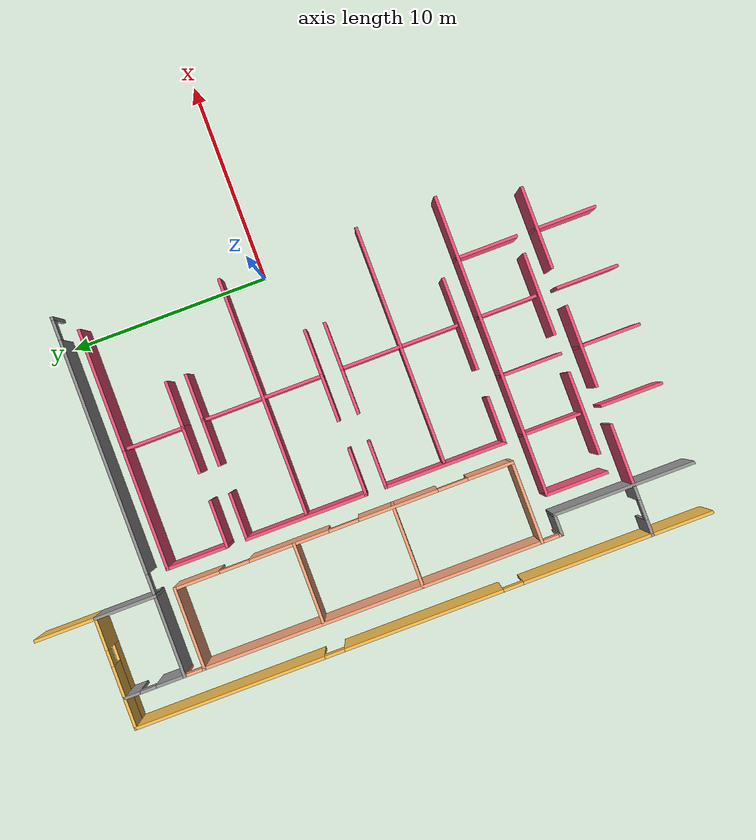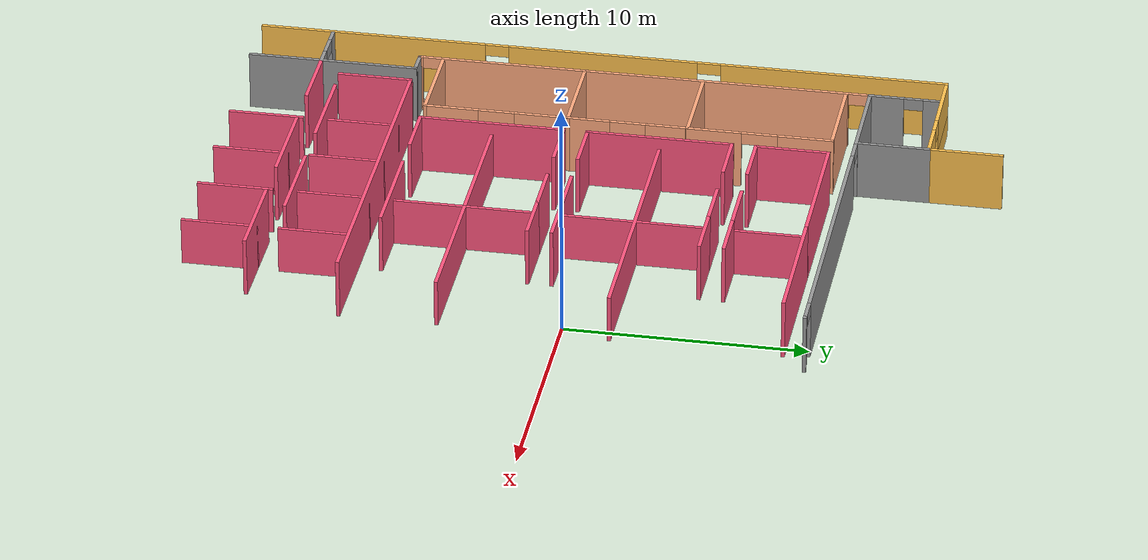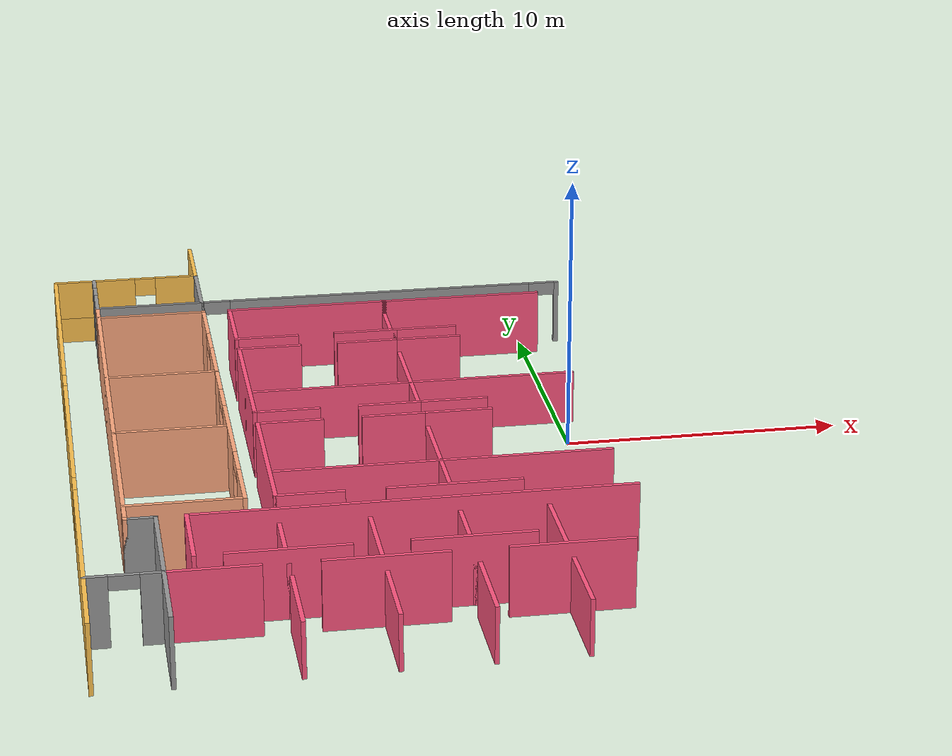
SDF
<sdf version="1.6">
 <model name="myWorld">
  <pose>-1.5 0 0 0 -0 0</pose>
  <link name="Wall_10">
   <pose>-16.5 -1.5 0 0 0 -1.5708</pose>
   <visual name="Wall_10_Visual_0">
    <pose>-9.7875 0 1.25 0 -0 0</pose>
    <geometry><box><size>9.575 0.15 2.5</size></box></geometry>
    <material>
     <script><uri>file://media/materials/scripts/gazebo.material</uri><name>Gazebo/Grey</name></script>
     <ambient>1 0.764706 0.305882 1</ambient>
    </material>
    <meta><layer>0</layer></meta>
   </visual>
   <collision name="Wall_10_Collision_0">
    <geometry><box><size>9.575 0.15 2.5</size></box></geometry>
    <pose>-9.7875 0 1.25 0 -0 0</pose>
   </collision>
   <visual name="Wall_10_Visual_1">
    <pose>0 0 1.25 0 -0 0</pose>
    <geometry><box><size>8 0.15 2.5</size></box></geometry>
    <material>
     <script><uri>file://media/materials/scripts/gazebo.material</uri><name>Gazebo/Grey</name></script>
     <ambient>1 0.764706 0.305882 1</ambient>
    </material>
    <meta><layer>0</layer></meta>
   </visual>
   <collision name="Wall_10_Collision_1">
    <geometry><box><size>8 0.15 2.5</size></box></geometry>
    <pose>0 0 1.25 0 -0 0</pose>
   </collision>
   <visual name="Wall_10_Visual_2">
    <pose>9.7875 0 1.25 0 -0 0</pose>
    <geometry><box><size>9.575 0.15 2.5</size></box></geometry>
    <material>
     <script><uri>file://media/materials/scripts/gazebo.material</uri><name>Gazebo/Grey</name></script>
     <ambient>1 0.764706 0.305882 1</ambient>
    </material>
    <meta><layer>0</layer></meta>
   </visual>
   <collision name="Wall_10_Collision_2">
    <geometry><box><size>9.575 0.15 2.5</size></box></geometry>
    <pose>9.7875 0 1.25 0 -0 0</pose>
   </collision>
   <visual name="Wall_10_Visual_3">
    <pose>-4.5 0 2.25 0 -0 0</pose>
    <geometry><box><size>1 0.15 0.5</size></box></geometry>
    <material>
     <script><uri>file://media/materials/scripts/gazebo.material</uri><name>Gazebo/Grey</name></script>
     <ambient>1 0.764706 0.305882 1</ambient>
    </material>
    <meta><layer>0</layer></meta>
   </visual>
   <collision name="Wall_10_Collision_3">
    <geometry><box><size>1 0.15 0.5</size></box></geometry>
    <pose>-4.5 0 2.25 0 -0 0</pose>
   </collision>
   <visual name="Wall_10_Visual_4">
    <pose>4.5 0 2.25 0 -0 0</pose>
    <geometry><box><size>1 0.15 0.5</size></box></geometry>
    <material>
     <script><uri>file://media/materials/scripts/gazebo.material</uri><name>Gazebo/Grey</name></script>
     <ambient>1 0.764706 0.305882 1</ambient>
    </material>
    <meta><layer>0</layer></meta>
   </visual>
   <collision name="Wall_10_Collision_4">
    <geometry><box><size>1 0.15 0.5</size></box></geometry>
    <pose>4.5 0 2.25 0 -0 0</pose>
   </collision>
  </link>
  <link name="Wall_100">
   <collision name="Wall_100_Collision">
    <geometry><box><size>15.15 0.15 2.5</size></box></geometry>
    <pose>0 0 1.25 0 -0 0</pose>
   </collision>
   <visual name="Wall_100_Visual">
    <pose>0 0 1.25 0 -0 0</pose>
    <geometry><box><size>15.15 0.15 2.5</size></box></geometry>
    <material>
     <script><uri>file://media/materials/scripts/gazebo.material</uri><name>Gazebo/Grey</name></script>
     <ambient>1 0.333333 0.498039 1</ambient>
    </material>
    <meta><layer>0</layer></meta>
   </visual>
   <pose>-5.5 -9 0 0 -0 0</pose>
  </link>
  <link name="Wall_102">
   <collision name="Wall_102_Collision">
    <geometry><box><size>3.15 0.15 2</size></box></geometry>
    <pose>0 0 1 0 -0 0</pose>
   </collision>
   <visual name="Wall_102_Visual">
    <pose>0 0 1 0 -0 0</pose>
    <geometry><box><size>3.15 0.15 2</size></box></geometry>
    <material>
     <script><uri>file://media/materials/scripts/gazebo.material</uri><name>Gazebo/Grey</name></script>
     <ambient>1 0.333333 0.498039 1</ambient>
    </material>
    <meta><layer>0</layer></meta>
   </visual>
   <pose>-10 -10.5 0 0 0 -1.5708</pose>
  </link>
  <link name="Wall_104">
   <collision name="Wall_104_Collision">
    <geometry><box><size>3.15 0.15 2</size></box></geometry>
    <pose>0 0 1 0 -0 0</pose>
   </collision>
   <visual name="Wall_104_Visual">
    <pose>0 0 1 0 -0 0</pose>
    <geometry><box><size>3.15 0.15 2</size></box></geometry>
    <material>
     <script><uri>file://media/materials/scripts/gazebo.material</uri><name>Gazebo/Grey</name></script>
     <ambient>1 0.333333 0.498039 1</ambient>
    </material>
    <meta><layer>0</layer></meta>
   </visual>
   <pose>-7 -10.5 0 0 0 -1.5708</pose>
  </link>
  <link name="Wall_106">
   <collision name="Wall_106_Collision">
    <geometry><box><size>3.15 0.15 2</size></box></geometry>
    <pose>0 0 1 0 -0 0</pose>
   </collision>
   <visual name="Wall_106_Visual">
    <pose>0 0 1 0 -0 0</pose>
    <geometry><box><size>3.15 0.15 2</size></box></geometry>
    <material>
     <script><uri>file://media/materials/scripts/gazebo.material</uri><name>Gazebo/Grey</name></script>
     <ambient>1 0.333333 0.498039 1</ambient>
    </material>
    <meta><layer>0</layer></meta>
   </visual>
   <pose>-4 -10.5 0 0 0 -1.5708</pose>
  </link>
  <link name="Wall_108">
   <collision name="Wall_108_Collision">
    <geometry><box><size>3.15 0.15 2</size></box></geometry>
    <pose>0 0 1 0 -0 0</pose>
   </collision>
   <visual name="Wall_108_Visual">
    <pose>0 0 1 0 -0 0</pose>
    <geometry><box><size>3.15 0.15 2</size></box></geometry>
    <material>
     <script><uri>file://media/materials/scripts/gazebo.material</uri><name>Gazebo/Grey</name></script>
     <ambient>1 0.333333 0.498039 1</ambient>
    </material>
    <meta><layer>0</layer></meta>
   </visual>
   <pose>-1 -10.5 0 0 0 -1.5708</pose>
  </link>
  <link name="Wall_114">
   <collision name="Wall_114_Collision">
    <geometry><box><size>3.15 0.15 2.5</size></box></geometry>
    <pose>0 0 1.25 0 -0 0</pose>
   </collision>
   <visual name="Wall_114_Visual">
    <pose>0 0 1.25 0 -0 0</pose>
    <geometry><box><size>3.15 0.15 2.5</size></box></geometry>
    <material>
     <script><uri>file://media/materials/scripts/gazebo.material</uri><name>Gazebo/Grey</name></script>
     <ambient>1 0.333333 0.498039 1</ambient>
    </material>
    <meta><layer>0</layer></meta>
   </visual>
   <pose>-13 -10.5 0 0 0 -1.5708</pose>
  </link>
  <link name="Wall_116">
   <collision name="Wall_116_Collision">
    <geometry><box><size>4.15 0.15 2.5</size></box></geometry>
    <pose>0 0 1.25 0 -0 0</pose>
   </collision>
   <visual name="Wall_116_Visual">
    <pose>0 0 1.25 0 -0 0</pose>
    <geometry><box><size>4.15 0.15 2.5</size></box></geometry>
    <material>
     <script><uri>file://media/materials/scripts/gazebo.material</uri><name>Gazebo/Grey</name></script>
     <ambient>1 0.333333 0.498039 1</ambient>
    </material>
    <meta><layer>0</layer></meta>
   </visual>
   <pose>-10 -12 0 0 -0 0</pose>
  </link>
  <link name="Wall_118">
   <collision name="Wall_118_Collision">
    <geometry><box><size>4.15 0.15 2.5</size></box></geometry>
    <pose>0 0 1.25 0 -0 0</pose>
   </collision>
   <visual name="Wall_118_Visual">
    <pose>0 0 1.25 0 -0 0</pose>
    <geometry><box><size>4.15 0.15 2.5</size></box></geometry>
    <material>
     <script><uri>file://media/materials/scripts/gazebo.material</uri><name>Gazebo/Grey</name></script>
     <ambient>1 0.333333 0.498039 1</ambient>
    </material>
    <meta><layer>0</layer></meta>
   </visual>
   <pose>-4 -12 0 0 -0 0</pose>
  </link>
  <link name="Wall_12">
   <pose>-15 11.5 0 0 0 -1.5708</pose>
   <visual name="Wall_12_Visual_0">
    <pose>-1.1475 0 1.25 0 -0 0</pose>
    <geometry><box><size>0.855 0.15 2.5</size></box></geometry>
    <material>
     <script><uri>file://media/materials/scripts/gazebo.material</uri><name>Gazebo/Grey</name></script>
     <ambient>1 1 1 1</ambient>
    </material>
    <meta><layer>0</layer></meta>
   </visual>
   <collision name="Wall_12_Collision_0">
    <geometry><box><size>0.855 0.15 2.5</size></box></geometry>
    <pose>-1.1475 0 1.25 0 -0 0</pose>
   </collision>
   <visual name="Wall_12_Visual_1">
    <pose>0.8275 0 1.25 0 -0 0</pose>
    <geometry><box><size>1.495 0.15 2.5</size></box></geometry>
    <material>
     <script><uri>file://media/materials/scripts/gazebo.material</uri><name>Gazebo/Grey</name></script>
     <ambient>1 1 1 1</ambient>
    </material>
    <meta><layer>0</layer></meta>
   </visual>
   <collision name="Wall_12_Collision_1">
    <geometry><box><size>1.495 0.15 2.5</size></box></geometry>
    <pose>0.8275 0 1.25 0 -0 0</pose>
   </collision>
   <visual name="Wall_12_Visual_2">
    <pose>-0.32 0 2.25 0 -0 0</pose>
    <geometry><box><size>0.8 0.15 0.5</size></box></geometry>
    <material>
     <script><uri>file://media/materials/scripts/gazebo.material</uri><name>Gazebo/Grey</name></script>
     <ambient>1 1 1 1</ambient>
    </material>
    <meta><layer>0</layer></meta>
   </visual>
   <collision name="Wall_12_Collision_2">
    <geometry><box><size>0.8 0.15 0.5</size></box></geometry>
    <pose>-0.32 0 2.25 0 -0 0</pose>
   </collision>
  </link>
  <link name="Wall_126">
   <collision name="Wall_126_Collision">
    <geometry><box><size>6.15 0.15 2</size></box></geometry>
    <pose>0 0 1 0 -0 0</pose>
   </collision>
   <visual name="Wall_126_Visual">
    <pose>0 0 1 0 -0 0</pose>
    <geometry><box><size>6.15 0.15 2</size></box></geometry>
    <material>
     <script><uri>file://media/materials/scripts/gazebo.material</uri><name>Gazebo/Grey</name></script>
     <ambient>1 0.333333 0.498039 1</ambient>
    </material>
    <meta><layer>0</layer></meta>
   </visual>
   <pose>-1 -5 0 0 -0 0</pose>
  </link>
  <link name="Wall_130">
   <collision name="Wall_130_Collision">
    <geometry><box><size>2.4 0.15 2.5</size></box></geometry>
    <pose>0 0 1.25 0 -0 0</pose>
   </collision>
   <visual name="Wall_130_Visual">
    <pose>0 0 1.25 0 -0 0</pose>
    <geometry><box><size>2.4 0.15 2.5</size></box></geometry>
    <material>
     <script><uri>file://media/materials/scripts/gazebo.material</uri><name>Gazebo/Grey</name></script>
     <ambient>1 0.333333 0.498039 1</ambient>
    </material>
    <meta><layer>0</layer></meta>
   </visual>
   <pose>-2.875 -2 0 0 -0 0</pose>
  </link>
  <link name="Wall_135">
   <collision name="Wall_135_Collision">
    <geometry><box><size>2.4 0.15 2.5</size></box></geometry>
    <pose>0 0 1.25 0 -0 0</pose>
   </collision>
   <visual name="Wall_135_Visual">
    <pose>0 0 1.25 0 -0 0</pose>
    <geometry><box><size>2.4 0.15 2.5</size></box></geometry>
    <material>
     <script><uri>file://media/materials/scripts/gazebo.material</uri><name>Gazebo/Grey</name></script>
     <ambient>1 0.333333 0.498039 1</ambient>
    </material>
    <meta><layer>0</layer></meta>
   </visual>
   <pose>-2.875 5 0 0 -0 0</pose>
  </link>
  <link name="Wall_14">
   <pose>-15 0.5 0 0 0 -1.5708</pose>
   <visual name="Wall_14_Visual_0">
    <pose>-9.4925 0 1.25 0 -0 0</pose>
    <geometry><box><size>0.165 0.15 2.5</size></box></geometry>
    <material>
     <script><uri>file://media/materials/scripts/gazebo.material</uri><name>Gazebo/Grey</name></script>
     <ambient>1 0.666667 0.498039 1</ambient>
    </material>
    <meta><layer>0</layer></meta>
   </visual>
   <collision name="Wall_14_Collision_0">
    <geometry><box><size>0.165 0.15 2.5</size></box></geometry>
    <pose>-9.4925 0 1.25 0 -0 0</pose>
   </collision>
   <visual name="Wall_14_Visual_1">
    <pose>-0.025 0 1.25 0 -0 0</pose>
    <geometry><box><size>17.17 0.15 2.5</size></box></geometry>
    <material>
     <script><uri>file://media/materials/scripts/gazebo.material</uri><name>Gazebo/Grey</name></script>
     <ambient>1 0.666667 0.498039 1</ambient>
    </material>
    <meta><layer>0</layer></meta>
   </visual>
   <collision name="Wall_14_Collision_1">
    <geometry><box><size>17.17 0.15 2.5</size></box></geometry>
    <pose>-0.025 0 1.25 0 -0 0</pose>
   </collision>
   <visual name="Wall_14_Visual_2">
    <pose>9.4675 0 1.25 0 -0 0</pose>
    <geometry><box><size>0.215 0.15 2.5</size></box></geometry>
    <material>
     <script><uri>file://media/materials/scripts/gazebo.material</uri><name>Gazebo/Grey</name></script>
     <ambient>1 0.666667 0.498039 1</ambient>
    </material>
    <meta><layer>0</layer></meta>
   </visual>
   <collision name="Wall_14_Collision_2">
    <geometry><box><size>0.215 0.15 2.5</size></box></geometry>
    <pose>9.4675 0 1.25 0 -0 0</pose>
   </collision>
   <visual name="Wall_14_Visual_3">
    <pose>-9.01 0 2.25 0 -0 0</pose>
    <geometry><box><size>0.8 0.15 0.5</size></box></geometry>
    <material>
     <script><uri>file://media/materials/scripts/gazebo.material</uri><name>Gazebo/Grey</name></script>
     <ambient>1 0.666667 0.498039 1</ambient>
    </material>
    <meta><layer>0</layer></meta>
   </visual>
   <collision name="Wall_14_Collision_3">
    <geometry><box><size>0.8 0.15 0.5</size></box></geometry>
    <pose>-9.01 0 2.25 0 -0 0</pose>
   </collision>
   <visual name="Wall_14_Visual_4">
    <pose>8.96 0 2.25 0 -0 0</pose>
    <geometry><box><size>0.8 0.15 0.5</size></box></geometry>
    <material>
     <script><uri>file://media/materials/scripts/gazebo.material</uri><name>Gazebo/Grey</name></script>
     <ambient>1 0.666667 0.498039 1</ambient>
    </material>
    <meta><layer>0</layer></meta>
   </visual>
   <collision name="Wall_14_Collision_4">
    <geometry><box><size>0.8 0.15 0.5</size></box></geometry>
    <pose>8.96 0 2.25 0 -0 0</pose>
   </collision>
  </link>
  <link name="Wall_141">
   <collision name="Wall_141_Collision">
    <geometry><box><size>2.4 0.15 2.5</size></box></geometry>
    <pose>0 0 1.25 0 -0 0</pose>
   </collision>
   <visual name="Wall_141_Visual">
    <pose>0 0 1.25 0 -0 0</pose>
    <geometry><box><size>2.4 0.15 2.5</size></box></geometry>
    <material>
     <script><uri>file://media/materials/scripts/gazebo.material</uri><name>Gazebo/Grey</name></script>
     <ambient>1 0.333333 0.498039 1</ambient>
    </material>
    <meta><layer>0</layer></meta>
   </visual>
   <pose>-2.875 -1 0 0 -0 0</pose>
  </link>
  <link name="Wall_143">
   <collision name="Wall_143_Collision">
    <geometry><box><size>6.15 0.15 2.5</size></box></geometry>
    <pose>0 0 1.25 0 -0 0</pose>
   </collision>
   <visual name="Wall_143_Visual">
    <pose>0 0 1.25 0 -0 0</pose>
    <geometry><box><size>6.15 0.15 2.5</size></box></geometry>
    <material>
     <script><uri>file://media/materials/scripts/gazebo.material</uri><name>Gazebo/Grey</name></script>
     <ambient>1 0.333333 0.498039 1</ambient>
    </material>
    <meta><layer>0</layer></meta>
   </visual>
   <pose>-1 9 0 0 -0 0</pose>
  </link>
  <link name="Wall_147">
   <collision name="Wall_147_Collision">
    <geometry><box><size>2.4 0.15 2.5</size></box></geometry>
    <pose>0 0 1.25 0 -0 0</pose>
   </collision>
   <visual name="Wall_147_Visual">
    <pose>0 0 1.25 0 -0 0</pose>
    <geometry><box><size>2.4 0.15 2.5</size></box></geometry>
    <material>
     <script><uri>file://media/materials/scripts/gazebo.material</uri><name>Gazebo/Grey</name></script>
     <ambient>1 0.333333 0.498039 1</ambient>
    </material>
    <meta><layer>0</layer></meta>
   </visual>
   <pose>-2.875 6 0 0 -0 0</pose>
  </link>
  <link name="Wall_149">
   <collision name="Wall_149_Collision">
    <geometry><box><size>4.15 0.15 2.5</size></box></geometry>
    <pose>0 0 1.25 0 -0 0</pose>
   </collision>
   <visual name="Wall_149_Visual">
    <pose>0 0 1.25 0 -0 0</pose>
    <geometry><box><size>4.15 0.15 2.5</size></box></geometry>
    <material>
     <script><uri>file://media/materials/scripts/gazebo.material</uri><name>Gazebo/Grey</name></script>
     <ambient>1 0.666667 0.498039 1</ambient>
    </material>
    <meta><layer>0</layer></meta>
   </visual>
   <pose>-13 3 0 0 -0 0</pose>
  </link>
  <link name="Wall_16">
   <collision name="Wall_16_Collision">
    <geometry><box><size>7.15 0.15 2.5</size></box></geometry>
    <pose>0 0 1.25 0 -0 0</pose>
   </collision>
   <visual name="Wall_16_Visual">
    <pose>0 0 1.25 0 -0 0</pose>
    <geometry><box><size>7.15 0.15 2.5</size></box></geometry>
    <material>
     <script><uri>file://media/materials/scripts/gazebo.material</uri><name>Gazebo/Grey</name></script>
     <ambient>1 1 1 1</ambient>
    </material>
    <meta><layer>0</layer></meta>
   </visual>
   <pose>-14 -12.5 0 0 0 -1.5708</pose>
  </link>
  <link name="Wall_18">
   <pose>-15.25 -13 0 0 -0 0</pose>
   <visual name="Wall_18_Visual_0">
    <pose>-0.9125 0 1.25 0 -0 0</pose>
    <geometry><box><size>0.825 0.15 2.5</size></box></geometry>
    <material>
     <script><uri>file://media/materials/scripts/gazebo.material</uri><name>Gazebo/Grey</name></script>
     <ambient>1 1 1 1</ambient>
    </material>
    <meta><layer>0</layer></meta>
   </visual>
   <collision name="Wall_18_Collision_0">
    <geometry><box><size>0.825 0.15 2.5</size></box></geometry>
    <pose>-0.9125 0 1.25 0 -0 0</pose>
   </collision>
   <visual name="Wall_18_Visual_1">
    <pose>0.9125 0 1.25 0 -0 0</pose>
    <geometry><box><size>0.825 0.15 2.5</size></box></geometry>
    <material>
     <script><uri>file://media/materials/scripts/gazebo.material</uri><name>Gazebo/Grey</name></script>
     <ambient>1 1 1 1</ambient>
    </material>
    <meta><layer>0</layer></meta>
   </visual>
   <collision name="Wall_18_Collision_1">
    <geometry><box><size>0.825 0.15 2.5</size></box></geometry>
    <pose>0.9125 0 1.25 0 -0 0</pose>
   </collision>
   <visual name="Wall_18_Visual_2">
    <pose>0 0 2.25 0 -0 0</pose>
    <geometry><box><size>1 0.15 0.5</size></box></geometry>
    <material>
     <script><uri>file://media/materials/scripts/gazebo.material</uri><name>Gazebo/Grey</name></script>
     <ambient>1 1 1 1</ambient>
    </material>
    <meta><layer>0</layer></meta>
   </visual>
   <collision name="Wall_18_Collision_2">
    <geometry><box><size>1 0.15 0.5</size></box></geometry>
    <pose>0 0 2.25 0 -0 0</pose>
   </collision>
  </link>
  <link name="Wall_20">
   <collision name="Wall_20_Collision">
    <geometry><box><size>3.15 0.15 2.5</size></box></geometry>
    <pose>0 0 1.25 0 -0 0</pose>
   </collision>
   <visual name="Wall_20_Visual">
    <pose>0 0 1.25 0 -0 0</pose>
    <geometry><box><size>3.15 0.15 2.5</size></box></geometry>
    <material>
     <script><uri>file://media/materials/scripts/gazebo.material</uri><name>Gazebo/Grey</name></script>
     <ambient>1 1 1 1</ambient>
    </material>
    <meta><layer>0</layer></meta>
   </visual>
   <pose>-11 11.5 0 0 0 -1.5708</pose>
  </link>
  <link name="Wall_26">
   <pose>-11 0.5 0 0 0 -1.5708</pose>
   <visual name="Wall_26_Visual_0">
    <pose>-7.4125 0 1.25 0 -0 0</pose>
    <geometry><box><size>2.325 0.15 2.5</size></box></geometry>
    <material>
     <script><uri>file://media/materials/scripts/gazebo.material</uri><name>Gazebo/Grey</name></script>
     <ambient>1 0.666667 0.498039 1</ambient>
    </material>
    <meta><layer>0</layer></meta>
   </visual>
   <collision name="Wall_26_Collision_0">
    <geometry><box><size>2.325 0.15 2.5</size></box></geometry>
    <pose>-7.4125 0 1.25 0 -0 0</pose>
   </collision>
   <visual name="Wall_26_Visual_1">
    <pose>-2.75 0 1.25 0 -0 0</pose>
    <geometry><box><size>4 0.15 2.5</size></box></geometry>
    <material>
     <script><uri>file://media/materials/scripts/gazebo.material</uri><name>Gazebo/Grey</name></script>
     <ambient>1 0.666667 0.498039 1</ambient>
    </material>
    <meta><layer>0</layer></meta>
   </visual>
   <collision name="Wall_26_Collision_1">
    <geometry><box><size>4 0.15 2.5</size></box></geometry>
    <pose>-2.75 0 1.25 0 -0 0</pose>
   </collision>
   <visual name="Wall_26_Visual_2">
    <pose>2.75 0 1.25 0 -0 0</pose>
    <geometry><box><size>4 0.15 2.5</size></box></geometry>
    <material>
     <script><uri>file://media/materials/scripts/gazebo.material</uri><name>Gazebo/Grey</name></script>
     <ambient>1 0.666667 0.498039 1</ambient>
    </material>
    <meta><layer>0</layer></meta>
   </visual>
   <collision name="Wall_26_Collision_2">
    <geometry><box><size>4 0.15 2.5</size></box></geometry>
    <pose>2.75 0 1.25 0 -0 0</pose>
   </collision>
   <visual name="Wall_26_Visual_3">
    <pose>7.4125 0 1.25 0 -0 0</pose>
    <geometry><box><size>2.325 0.15 2.5</size></box></geometry>
    <material>
     <script><uri>file://media/materials/scripts/gazebo.material</uri><name>Gazebo/Grey</name></script>
     <ambient>1 0.666667 0.498039 1</ambient>
    </material>
    <meta><layer>0</layer></meta>
   </visual>
   <collision name="Wall_26_Collision_3">
    <geometry><box><size>2.325 0.15 2.5</size></box></geometry>
    <pose>7.4125 0 1.25 0 -0 0</pose>
   </collision>
   <visual name="Wall_26_Visual_4">
    <pose>-5.5 0 2.25 0 -0 0</pose>
    <geometry><box><size>1.5 0.15 0.5</size></box></geometry>
    <material>
     <script><uri>file://media/materials/scripts/gazebo.material</uri><name>Gazebo/Grey</name></script>
     <ambient>1 0.666667 0.498039 1</ambient>
    </material>
    <meta><layer>0</layer></meta>
   </visual>
   <collision name="Wall_26_Collision_4">
    <geometry><box><size>1.5 0.15 0.5</size></box></geometry>
    <pose>-5.5 0 2.25 0 -0 0</pose>
   </collision>
   <visual name="Wall_26_Visual_5">
    <pose>0 0 2.25 0 -0 0</pose>
    <geometry><box><size>1.5 0.15 0.5</size></box></geometry>
    <material>
     <script><uri>file://media/materials/scripts/gazebo.material</uri><name>Gazebo/Grey</name></script>
     <ambient>1 0.666667 0.498039 1</ambient>
    </material>
    <meta><layer>0</layer></meta>
   </visual>
   <collision name="Wall_26_Collision_5">
    <geometry><box><size>1.5 0.15 0.5</size></box></geometry>
    <pose>0 0 2.25 0 -0 0</pose>
   </collision>
   <visual name="Wall_26_Visual_6">
    <pose>5.5 0 2.25 0 -0 0</pose>
    <geometry><box><size>1.5 0.15 0.5</size></box></geometry>
    <material>
     <script><uri>file://media/materials/scripts/gazebo.material</uri><name>Gazebo/Grey</name></script>
     <ambient>1 0.666667 0.498039 1</ambient>
    </material>
    <meta><layer>0</layer></meta>
   </visual>
   <collision name="Wall_26_Collision_6">
    <geometry><box><size>1.5 0.15 0.5</size></box></geometry>
    <pose>5.5 0 2.25 0 -0 0</pose>
   </collision>
  </link>
  <link name="Wall_28">
   <collision name="Wall_28_Collision">
    <geometry><box><size>4.15 0.15 2.5</size></box></geometry>
    <pose>0 0 1.25 0 -0 0</pose>
   </collision>
   <visual name="Wall_28_Visual">
    <pose>0 0 1.25 0 -0 0</pose>
    <geometry><box><size>4.15 0.15 2.5</size></box></geometry>
    <material>
     <script><uri>file://media/materials/scripts/gazebo.material</uri><name>Gazebo/Grey</name></script>
     <ambient>1 0.666667 0.498039 1</ambient>
    </material>
    <meta><layer>0</layer></meta>
   </visual>
   <pose>-13 -2 0 0 -0 0</pose>
  </link>
  <link name="Wall_32">
   <collision name="Wall_32_Collision">
    <geometry><box><size>4.15 0.15 2.5</size></box></geometry>
    <pose>0 0 1.25 0 -0 0</pose>
   </collision>
   <visual name="Wall_32_Visual">
    <pose>0 0 1.25 0 -0 0</pose>
    <geometry><box><size>4.15 0.15 2.5</size></box></geometry>
    <material>
     <script><uri>file://media/materials/scripts/gazebo.material</uri><name>Gazebo/Grey</name></script>
     <ambient>1 0.666667 0.498039 1</ambient>
    </material>
    <meta><layer>0</layer></meta>
   </visual>
   <pose>-13 -8 0 0 -0 0</pose>
  </link>
  <link name="Wall_34">
   <collision name="Wall_34_Collision">
    <geometry><box><size>1.15 0.15 2.5</size></box></geometry>
    <pose>0 0 1.25 0 -0 0</pose>
   </collision>
   <visual name="Wall_34_Visual">
    <pose>0 0 1.25 0 -0 0</pose>
    <geometry><box><size>1.15 0.15 2.5</size></box></geometry>
    <material>
     <script><uri>file://media/materials/scripts/gazebo.material</uri><name>Gazebo/Grey</name></script>
     <ambient>1 1 1 1</ambient>
    </material>
    <meta><layer>0</layer></meta>
   </visual>
   <pose>-14.5 -9 0 0 -0 0</pose>
  </link>
  <link name="Wall_38">
   <collision name="Wall_38_Collision">
    <geometry><box><size>3.15 0.15 2.5</size></box></geometry>
    <pose>0 0 1.25 0 -0 0</pose>
   </collision>
   <visual name="Wall_38_Visual">
    <pose>0 0 1.25 0 -0 0</pose>
    <geometry><box><size>3.15 0.15 2.5</size></box></geometry>
    <material>
     <script><uri>file://media/materials/scripts/gazebo.material</uri><name>Gazebo/Grey</name></script>
     <ambient>1 0.333333 0.498039 1</ambient>
    </material>
    <meta><layer>0</layer></meta>
   </visual>
   <pose>-12.5 -13 0 0 -0 0</pose>
  </link>
  <link name="Wall_42">
   <pose>-6 10 0 0 -0 0</pose>
   <visual name="Wall_42_Visual_0">
    <pose>-6.9875 0 1.25 0 -0 0</pose>
    <geometry><box><size>4.175 0.15 2.5</size></box></geometry>
    <material>
     <script><uri>file://media/materials/scripts/gazebo.material</uri><name>Gazebo/Grey</name></script>
     <ambient>1 1 1 1</ambient>
    </material>
    <meta><layer>0</layer></meta>
   </visual>
   <collision name="Wall_42_Collision_0">
    <geometry><box><size>4.175 0.15 2.5</size></box></geometry>
    <pose>-6.9875 0 1.25 0 -0 0</pose>
   </collision>
   <visual name="Wall_42_Visual_1">
    <pose>2 0 1.25 0 -0 0</pose>
    <geometry><box><size>11.8 0.15 2.5</size></box></geometry>
    <material>
     <script><uri>file://media/materials/scripts/gazebo.material</uri><name>Gazebo/Grey</name></script>
     <ambient>1 1 1 1</ambient>
    </material>
    <meta><layer>0</layer></meta>
   </visual>
   <collision name="Wall_42_Collision_1">
    <geometry><box><size>11.8 0.15 2.5</size></box></geometry>
    <pose>2 0 1.25 0 -0 0</pose>
   </collision>
   <visual name="Wall_42_Visual_2">
    <pose>8.9875 0 1.25 0 -0 0</pose>
    <geometry><box><size>0.175 0.15 2.5</size></box></geometry>
    <material>
     <script><uri>file://media/materials/scripts/gazebo.material</uri><name>Gazebo/Grey</name></script>
     <ambient>1 1 1 1</ambient>
    </material>
    <meta><layer>0</layer></meta>
   </visual>
   <collision name="Wall_42_Collision_2">
    <geometry><box><size>0.175 0.15 2.5</size></box></geometry>
    <pose>8.9875 0 1.25 0 -0 0</pose>
   </collision>
   <visual name="Wall_42_Visual_3">
    <pose>-4.4 0 2.25 0 -0 0</pose>
    <geometry><box><size>1 0.15 0.5</size></box></geometry>
    <material>
     <script><uri>file://media/materials/scripts/gazebo.material</uri><name>Gazebo/Grey</name></script>
     <ambient>1 1 1 1</ambient>
    </material>
    <meta><layer>0</layer></meta>
   </visual>
   <collision name="Wall_42_Collision_3">
    <geometry><box><size>1 0.15 0.5</size></box></geometry>
    <pose>-4.4 0 2.25 0 -0 0</pose>
   </collision>
   <visual name="Wall_42_Visual_4">
    <pose>8.4 0 2.25 0 -0 0</pose>
    <geometry><box><size>1 0.15 0.5</size></box></geometry>
    <material>
     <script><uri>file://media/materials/scripts/gazebo.material</uri><name>Gazebo/Grey</name></script>
     <ambient>1 1 1 1</ambient>
    </material>
    <meta><layer>0</layer></meta>
   </visual>
   <collision name="Wall_42_Collision_4">
    <geometry><box><size>1 0.15 0.5</size></box></geometry>
    <pose>8.4 0 2.25 0 -0 0</pose>
   </collision>
  </link>
  <link name="Wall_44">
   <collision name="Wall_44_Collision">
    <geometry><box><size>4.15 0.15 2.5</size></box></geometry>
    <pose>0 0 1.25 0 -0 0</pose>
   </collision>
   <visual name="Wall_44_Visual">
    <pose>0 0 1.25 0 -0 0</pose>
    <geometry><box><size>4.15 0.15 2.5</size></box></geometry>
    <material>
     <script><uri>file://media/materials/scripts/gazebo.material</uri><name>Gazebo/Grey</name></script>
     <ambient>1 0.666667 0.498039 1</ambient>
    </material>
    <meta><layer>0</layer></meta>
   </visual>
   <pose>-13 9 0 0 -0 0</pose>
  </link>
  <link name="Wall_46">
   <collision name="Wall_46_Collision">
    <geometry><box><size>6.15 0.15 2.5</size></box></geometry>
    <pose>0 0 1.25 0 -0 0</pose>
   </collision>
   <visual name="Wall_46_Visual">
    <pose>0 0 1.25 0 -0 0</pose>
    <geometry><box><size>6.15 0.15 2.5</size></box></geometry>
    <material>
     <script><uri>file://media/materials/scripts/gazebo.material</uri><name>Gazebo/Grey</name></script>
     <ambient>1 0.333333 0.498039 1</ambient>
    </material>
    <meta><layer>0</layer></meta>
   </visual>
   <pose>-10 -5 0 0 -0 1.5708</pose>
  </link>
  <link name="Wall_48">
   <collision name="Wall_48_Collision">
    <geometry><box><size>6.15 0.15 2</size></box></geometry>
    <pose>0 0 1 0 -0 0</pose>
   </collision>
   <visual name="Wall_48_Visual">
    <pose>0 0 1 0 -0 0</pose>
    <geometry><box><size>6.15 0.15 2</size></box></geometry>
    <material>
     <script><uri>file://media/materials/scripts/gazebo.material</uri><name>Gazebo/Grey</name></script>
     <ambient>1 0.333333 0.498039 1</ambient>
    </material>
    <meta><layer>0</layer></meta>
   </visual>
   <pose>-4 -5 0 0 -0 1.5708</pose>
  </link>
  <link name="Wall_50">
   <collision name="Wall_50_Collision">
    <geometry><box><size>3.15 0.15 2</size></box></geometry>
    <pose>0 0 1 0 -0 0</pose>
   </collision>
   <visual name="Wall_50_Visual">
    <pose>0 0 1 0 -0 0</pose>
    <geometry><box><size>3.15 0.15 2</size></box></geometry>
    <material>
     <script><uri>file://media/materials/scripts/gazebo.material</uri><name>Gazebo/Grey</name></script>
     <ambient>1 0.333333 0.498039 1</ambient>
    </material>
    <meta><layer>0</layer></meta>
   </visual>
   <pose>-10 -14.5 0 0 -0 1.5708</pose>
  </link>
  <link name="Wall_52">
   <collision name="Wall_52_Collision">
    <geometry><box><size>3.15 0.15 2</size></box></geometry>
    <pose>0 0 1 0 -0 0</pose>
   </collision>
   <visual name="Wall_52_Visual">
    <pose>0 0 1 0 -0 0</pose>
    <geometry><box><size>3.15 0.15 2</size></box></geometry>
    <material>
     <script><uri>file://media/materials/scripts/gazebo.material</uri><name>Gazebo/Grey</name></script>
     <ambient>1 0.333333 0.498039 1</ambient>
    </material>
    <meta><layer>0</layer></meta>
   </visual>
   <pose>-7 -14.5 0 0 -0 1.5708</pose>
  </link>
  <link name="Wall_57">
   <collision name="Wall_57_Collision">
    <geometry><box><size>3.15 0.15 2</size></box></geometry>
    <pose>0 0 1 0 -0 0</pose>
   </collision>
   <visual name="Wall_57_Visual">
    <pose>0 0 1 0 -0 0</pose>
    <geometry><box><size>3.15 0.15 2</size></box></geometry>
    <material>
     <script><uri>file://media/materials/scripts/gazebo.material</uri><name>Gazebo/Grey</name></script>
     <ambient>1 0.333333 0.498039 1</ambient>
    </material>
    <meta><layer>0</layer></meta>
   </visual>
   <pose>-4 -14.5 0 0 -0 1.5708</pose>
  </link>
  <link name="Wall_59">
   <collision name="Wall_59_Collision">
    <geometry><box><size>4.15 0.15 2.5</size></box></geometry>
    <pose>0 0 1.25 0 -0 0</pose>
   </collision>
   <visual name="Wall_59_Visual">
    <pose>0 0 1.25 0 -0 0</pose>
    <geometry><box><size>4.15 0.15 2.5</size></box></geometry>
    <material>
     <script><uri>file://media/materials/scripts/gazebo.material</uri><name>Gazebo/Grey</name></script>
     <ambient>1 0.333333 0.498039 1</ambient>
    </material>
    <meta><layer>0</layer></meta>
   </visual>
   <pose>-7 -13 0 0 -0 0</pose>
  </link>
  <link name="Wall_6">
   <collision name="Wall_6_Collision">
    <geometry><box><size>3.15 0.15 2.5</size></box></geometry>
    <pose>0 0 1.25 0 -0 0</pose>
   </collision>
   <visual name="Wall_6_Visual">
    <pose>0 0 1.25 0 -0 0</pose>
    <geometry><box><size>3.15 0.15 2.5</size></box></geometry>
    <material>
     <script><uri>file://media/materials/scripts/gazebo.material</uri><name>Gazebo/Grey</name></script>
     <ambient>1 0.764706 0.305882 1</ambient>
    </material>
    <meta><layer>0</layer></meta>
   </visual>
   <pose>-11 14.5 0 0 0 -1.5708</pose>
  </link>
  <link name="Wall_64">
   <collision name="Wall_64_Collision">
    <geometry><box><size>3.15 0.15 2</size></box></geometry>
    <pose>0 0 1 0 -0 0</pose>
   </collision>
   <visual name="Wall_64_Visual">
    <pose>0 0 1 0 -0 0</pose>
    <geometry><box><size>3.15 0.15 2</size></box></geometry>
    <material>
     <script><uri>file://media/materials/scripts/gazebo.material</uri><name>Gazebo/Grey</name></script>
     <ambient>1 0.333333 0.498039 1</ambient>
    </material>
    <meta><layer>0</layer></meta>
   </visual>
   <pose>-1 -14.5 0 0 -0 1.5708</pose>
  </link>
  <link name="Wall_68">
   <collision name="Wall_68_Collision">
    <geometry><box><size>4.15 0.15 2.5</size></box></geometry>
    <pose>0 0 1.25 0 -0 0</pose>
   </collision>
   <visual name="Wall_68_Visual">
    <pose>0 0 1.25 0 -0 0</pose>
    <geometry><box><size>4.15 0.15 2.5</size></box></geometry>
    <material>
     <script><uri>file://media/materials/scripts/gazebo.material</uri><name>Gazebo/Grey</name></script>
     <ambient>1 0.333333 0.498039 1</ambient>
    </material>
    <meta><layer>0</layer></meta>
   </visual>
   <pose>-1 -13 0 0 -0 0</pose>
  </link>
  <link name="Wall_72">
   <collision name="Wall_72_Collision">
    <geometry><box><size>6.15 0.15 2</size></box></geometry>
    <pose>0 0 1 0 -0 0</pose>
   </collision>
   <visual name="Wall_72_Visual">
    <pose>0 0 1 0 -0 0</pose>
    <geometry><box><size>6.15 0.15 2</size></box></geometry>
    <material>
     <script><uri>file://media/materials/scripts/gazebo.material</uri><name>Gazebo/Grey</name></script>
     <ambient>1 0.333333 0.498039 1</ambient>
    </material>
    <meta><layer>0</layer></meta>
   </visual>
   <pose>-7 -5 0 0 -0 0</pose>
  </link>
  <link name="Wall_74">
   <collision name="Wall_74_Collision">
    <geometry><box><size>2.4 0.15 2.5</size></box></geometry>
    <pose>0 0 1.25 0 -0 0</pose>
   </collision>
   <visual name="Wall_74_Visual">
    <pose>0 0 1.25 0 -0 0</pose>
    <geometry><box><size>2.4 0.15 2.5</size></box></geometry>
    <material>
     <script><uri>file://media/materials/scripts/gazebo.material</uri><name>Gazebo/Grey</name></script>
     <ambient>1 0.333333 0.498039 1</ambient>
    </material>
    <meta><layer>0</layer></meta>
   </visual>
   <pose>-8.875 -8 0 0 -0 0</pose>
  </link>
  <link name="Wall_76">
   <collision name="Wall_76_Collision">
    <geometry><box><size>4.65 0.15 2.5</size></box></geometry>
    <pose>0 0 1.25 0 -0 0</pose>
   </collision>
   <visual name="Wall_76_Visual">
    <pose>0 0 1.25 0 -0 0</pose>
    <geometry><box><size>4.65 0.15 2.5</size></box></geometry>
    <material>
     <script><uri>file://media/materials/scripts/gazebo.material</uri><name>Gazebo/Grey</name></script>
     <ambient>1 0.333333 0.498039 1</ambient>
    </material>
    <meta><layer>0</layer></meta>
   </visual>
   <pose>-4 -8 0 0 -0 0</pose>
  </link>
  <link name="Wall_78">
   <collision name="Wall_78_Collision">
    <geometry><box><size>2.4 0.15 2.5</size></box></geometry>
    <pose>0 0 1.25 0 -0 0</pose>
   </collision>
   <visual name="Wall_78_Visual">
    <pose>0 0 1.25 0 -0 0</pose>
    <geometry><box><size>2.4 0.15 2.5</size></box></geometry>
    <material>
     <script><uri>file://media/materials/scripts/gazebo.material</uri><name>Gazebo/Grey</name></script>
     <ambient>1 0.333333 0.498039 1</ambient>
    </material>
    <meta><layer>0</layer></meta>
   </visual>
   <pose>-8.875 -2 0 0 -0 0</pose>
  </link>
  <link name="Wall_8">
   <pose>-13.75 13 0 0 -0 3.14159</pose>
   <visual name="Wall_8_Visual_0">
    <pose>-1.9875 0 1.25 0 -0 0</pose>
    <geometry><box><size>1.675 0.15 2.5</size></box></geometry>
    <material>
     <script><uri>file://media/materials/scripts/gazebo.material</uri><name>Gazebo/Grey</name></script>
     <ambient>1 0.764706 0.305882 1</ambient>
    </material>
    <meta><layer>0</layer></meta>
   </visual>
   <collision name="Wall_8_Collision_0">
    <geometry><box><size>1.675 0.15 2.5</size></box></geometry>
    <pose>-1.9875 0 1.25 0 -0 0</pose>
   </collision>
   <visual name="Wall_8_Visual_1">
    <pose>0.8375 0 0.5 0 -0 0</pose>
    <geometry><box><size>3.975 0.15 1</size></box></geometry>
    <material>
     <script><uri>file://media/materials/scripts/gazebo.material</uri><name>Gazebo/Grey</name></script>
     <ambient>1 0.764706 0.305882 1</ambient>
    </material>
    <meta><layer>0</layer></meta>
   </visual>
   <collision name="Wall_8_Collision_1">
    <geometry><box><size>3.975 0.15 1</size></box></geometry>
    <pose>0.8375 0 0.5 0 -0 0</pose>
   </collision>
   <visual name="Wall_8_Visual_2">
    <pose>1.2375 0 1.75 0 -0 0</pose>
    <geometry><box><size>3.175 0.15 1.5</size></box></geometry>
    <material>
     <script><uri>file://media/materials/scripts/gazebo.material</uri><name>Gazebo/Grey</name></script>
     <ambient>1 0.764706 0.305882 1</ambient>
    </material>
    <meta><layer>0</layer></meta>
   </visual>
   <collision name="Wall_8_Collision_2">
    <geometry><box><size>3.175 0.15 1.5</size></box></geometry>
    <pose>1.2375 0 1.75 0 -0 0</pose>
   </collision>
   <visual name="Wall_8_Visual_3">
    <pose>-0.75 0 2.15 0 -0 0</pose>
    <geometry><box><size>0.8 0.15 0.7</size></box></geometry>
    <material>
     <script><uri>file://media/materials/scripts/gazebo.material</uri><name>Gazebo/Grey</name></script>
     <ambient>1 0.764706 0.305882 1</ambient>
    </material>
    <meta><layer>0</layer></meta>
   </visual>
   <collision name="Wall_8_Collision_3">
    <geometry><box><size>0.8 0.15 0.7</size></box></geometry>
    <pose>-0.75 0 2.15 0 -0 0</pose>
   </collision>
  </link>
  <link name="Wall_80">
   <collision name="Wall_80_Collision">
    <geometry><box><size>2.4 0.15 2.5</size></box></geometry>
    <pose>0 0 1.25 0 -0 0</pose>
   </collision>
   <visual name="Wall_80_Visual">
    <pose>0 0 1.25 0 -0 0</pose>
    <geometry><box><size>2.4 0.15 2.5</size></box></geometry>
    <material>
     <script><uri>file://media/materials/scripts/gazebo.material</uri><name>Gazebo/Grey</name></script>
     <ambient>1 0.333333 0.498039 1</ambient>
    </material>
    <meta><layer>0</layer></meta>
   </visual>
   <pose>-5.125 -2 0 0 -0 0</pose>
  </link>
  <link name="Wall_82">
   <collision name="Wall_82_Collision">
    <geometry><box><size>2.4 0.15 2.5</size></box></geometry>
    <pose>0 0 1.25 0 -0 0</pose>
   </collision>
   <visual name="Wall_82_Visual">
    <pose>0 0 1.25 0 -0 0</pose>
    <geometry><box><size>2.4 0.15 2.5</size></box></geometry>
    <material>
     <script><uri>file://media/materials/scripts/gazebo.material</uri><name>Gazebo/Grey</name></script>
     <ambient>1 0.333333 0.498039 1</ambient>
    </material>
    <meta><layer>0</layer></meta>
   </visual>
   <pose>-5.125 -1 0 0 -0 0</pose>
  </link>
  <link name="Wall_83">
   <collision name="Wall_83_Collision">
    <geometry><box><size>6.15 0.15 2</size></box></geometry>
    <pose>0 0 1 0 -0 0</pose>
   </collision>
   <visual name="Wall_83_Visual">
    <pose>0 0 1 0 -0 0</pose>
    <geometry><box><size>6.15 0.15 2</size></box></geometry>
    <material>
     <script><uri>file://media/materials/scripts/gazebo.material</uri><name>Gazebo/Grey</name></script>
     <ambient>1 0.333333 0.498039 1</ambient>
    </material>
    <meta><layer>0</layer></meta>
   </visual>
   <pose>-4 2 0 0 -0 1.5708</pose>
  </link>
  <link name="Wall_86">
   <collision name="Wall_86_Collision">
    <geometry><box><size>12.15 0.15 2</size></box></geometry>
    <pose>0 0 1 0 -0 0</pose>
   </collision>
   <visual name="Wall_86_Visual">
    <pose>0 0 1 0 -0 0</pose>
    <geometry><box><size>12.15 0.15 2</size></box></geometry>
    <material>
     <script><uri>file://media/materials/scripts/gazebo.material</uri><name>Gazebo/Grey</name></script>
     <ambient>1 0.333333 0.498039 1</ambient>
    </material>
    <meta><layer>0</layer></meta>
   </visual>
   <pose>-4 2 0 0 -0 0</pose>
  </link>
  <link name="Wall_88">
   <collision name="Wall_88_Collision">
    <geometry><box><size>2.4 0.15 2.5</size></box></geometry>
    <pose>0 0 1.25 0 -0 0</pose>
   </collision>
   <visual name="Wall_88_Visual">
    <pose>0 0 1.25 0 -0 0</pose>
    <geometry><box><size>2.4 0.15 2.5</size></box></geometry>
    <material>
     <script><uri>file://media/materials/scripts/gazebo.material</uri><name>Gazebo/Grey</name></script>
     <ambient>1 0.333333 0.498039 1</ambient>
    </material>
    <meta><layer>0</layer></meta>
   </visual>
   <pose>-8.875 -1 0 0 -0 3.14159</pose>
  </link>
  <link name="Wall_89">
   <collision name="Wall_89_Collision">
    <geometry><box><size>6.15 0.15 2.5</size></box></geometry>
    <pose>0 0 1.25 0 -0 0</pose>
   </collision>
   <visual name="Wall_89_Visual">
    <pose>0 0 1.25 0 -0 0</pose>
    <geometry><box><size>6.15 0.15 2.5</size></box></geometry>
    <material>
     <script><uri>file://media/materials/scripts/gazebo.material</uri><name>Gazebo/Grey</name></script>
     <ambient>1 0.333333 0.498039 1</ambient>
    </material>
    <meta><layer>0</layer></meta>
   </visual>
   <pose>-10 2 0 0 -0 1.5708</pose>
  </link>
  <link name="Wall_90">
   <collision name="Wall_90_Collision">
    <geometry><box><size>2.4 0.15 2.5</size></box></geometry>
    <pose>0 0 1.25 0 -0 0</pose>
   </collision>
   <visual name="Wall_90_Visual">
    <pose>0 0 1.25 0 -0 0</pose>
    <geometry><box><size>2.4 0.15 2.5</size></box></geometry>
    <material>
     <script><uri>file://media/materials/scripts/gazebo.material</uri><name>Gazebo/Grey</name></script>
     <ambient>1 0.333333 0.498039 1</ambient>
    </material>
    <meta><layer>0</layer></meta>
   </visual>
   <pose>-8.875 5 0 0 -0 0</pose>
  </link>
  <link name="Wall_92">
   <collision name="Wall_92_Collision">
    <geometry><box><size>2.4 0.15 2.5</size></box></geometry>
    <pose>0 0 1.25 0 -0 0</pose>
   </collision>
   <visual name="Wall_92_Visual">
    <pose>0 0 1.25 0 -0 0</pose>
    <geometry><box><size>2.4 0.15 2.5</size></box></geometry>
    <material>
     <script><uri>file://media/materials/scripts/gazebo.material</uri><name>Gazebo/Grey</name></script>
     <ambient>1 0.333333 0.498039 1</ambient>
    </material>
    <meta><layer>0</layer></meta>
   </visual>
   <pose>-5.125 5 0 0 -0 0</pose>
  </link>
  <link name="Wall_94">
   <collision name="Wall_94_Collision">
    <geometry><box><size>2.4 0.15 2.5</size></box></geometry>
    <pose>0 0 1.25 0 -0 0</pose>
   </collision>
   <visual name="Wall_94_Visual">
    <pose>0 0 1.25 0 -0 0</pose>
    <geometry><box><size>2.4 0.15 2.5</size></box></geometry>
    <material>
     <script><uri>file://media/materials/scripts/gazebo.material</uri><name>Gazebo/Grey</name></script>
     <ambient>1 0.333333 0.498039 1</ambient>
    </material>
    <meta><layer>0</layer></meta>
   </visual>
   <pose>-8.875 6 0 0 -0 3.14159</pose>
  </link>
  <link name="Wall_95">
   <collision name="Wall_95_Collision">
    <geometry><box><size>3.15 0.15 2.5</size></box></geometry>
    <pose>0 0 1.25 0 -0 0</pose>
   </collision>
   <visual name="Wall_95_Visual">
    <pose>0 0 1.25 0 -0 0</pose>
    <geometry><box><size>3.15 0.15 2.5</size></box></geometry>
    <material>
     <script><uri>file://media/materials/scripts/gazebo.material</uri><name>Gazebo/Grey</name></script>
     <ambient>1 0.333333 0.498039 1</ambient>
    </material>
    <meta><layer>0</layer></meta>
   </visual>
   <pose>-10 7.5 0 0 -0 1.5708</pose>
  </link>
  <link name="Wall_96">
   <collision name="Wall_96_Collision">
    <geometry><box><size>6.15 0.15 2.5</size></box></geometry>
    <pose>0 0 1.25 0 -0 0</pose>
   </collision>
   <visual name="Wall_96_Visual">
    <pose>0 0 1.25 0 -0 0</pose>
    <geometry><box><size>6.15 0.15 2.5</size></box></geometry>
    <material>
     <script><uri>file://media/materials/scripts/gazebo.material</uri><name>Gazebo/Grey</name></script>
     <ambient>1 0.333333 0.498039 1</ambient>
    </material>
    <meta><layer>0</layer></meta>
   </visual>
   <pose>-7 9 0 0 -0 0</pose>
  </link>
  <link name="Wall_97">
   <collision name="Wall_97_Collision">
    <geometry><box><size>3.15 0.15 2</size></box></geometry>
    <pose>0 0 1 0 -0 0</pose>
   </collision>
   <visual name="Wall_97_Visual">
    <pose>0 0 1 0 -0 0</pose>
    <geometry><box><size>3.15 0.15 2</size></box></geometry>
    <material>
     <script><uri>file://media/materials/scripts/gazebo.material</uri><name>Gazebo/Grey</name></script>
     <ambient>1 0.333333 0.498039 1</ambient>
    </material>
    <meta><layer>0</layer></meta>
   </visual>
   <pose>-4 7.5 0 0 0 -1.5708</pose>
  </link>
  <link name="Wall_98">
   <collision name="Wall_98_Collision">
    <geometry><box><size>2.4 0.15 2.5</size></box></geometry>
    <pose>0 0 1.25 0 -0 0</pose>
   </collision>
   <visual name="Wall_98_Visual">
    <pose>0 0 1.25 0 -0 0</pose>
    <geometry><box><size>2.4 0.15 2.5</size></box></geometry>
    <material>
     <script><uri>file://media/materials/scripts/gazebo.material</uri><name>Gazebo/Grey</name></script>
     <ambient>1 0.333333 0.498039 1</ambient>
    </material>
    <meta><layer>0</layer></meta>
   </visual>
   <pose>-5.125 6 0 0 -0 3.14159</pose>
  </link>
  <static>1</static>
 </model>
</sdf>
